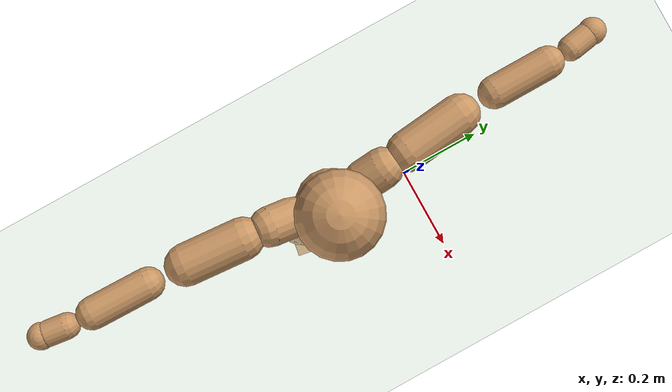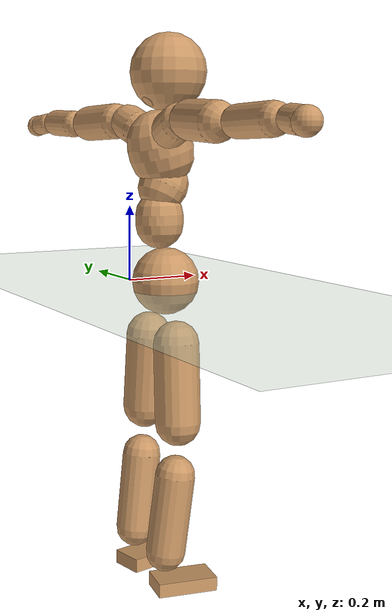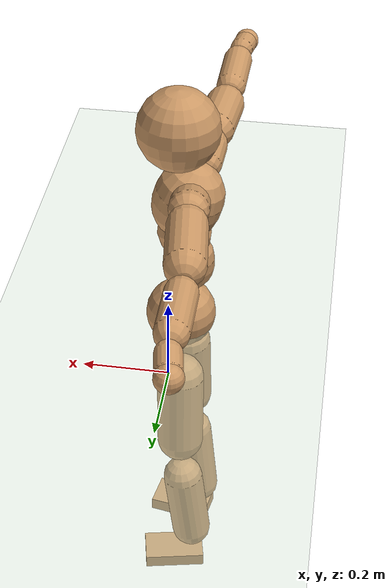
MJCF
<mujoco model="humanoid">
  <compiler coordinate="local"/>
  <default>
    <joint damping="0.0" armature="0.01" stiffness="0.0" limited="true"/>
    <geom conaffinity="1" condim="3" contype="7" margin="0.001" rgba="0.8 0.6 .4 1"/>
  </default>
  <asset>
    <texture type="skybox" builtin="gradient" rgb1=".4 .5 .6" rgb2="0 0 0" width="100" height="100"/>
    <texture builtin="flat" height="1278" mark="cross" markrgb="1 1 1" name="texgeom" random="0.01" rgb1="0.8 0.6 0.4" rgb2="0.8 0.6 0.4" type="cube" width="127"/>
    <texture builtin="checker" height="100" name="texplane" rgb1="0 0 0" rgb2="0.8 0.8 0.8" type="2d" width="100"/>
    <material name="MatPlane" reflectance="0.5" shininess="1" specular="1" texrepeat="60 60" texture="texplane"/>
    <material name="geom" texture="texgeom" texuniform="true"/>
  </asset>
  <worldbody>
    <light cutoff="100" diffuse="1 1 1" dir="-0 0 -1.3" directional="true" exponent="1" pos="0 0 1.3" specular=".1 .1 .1"/>
    <geom conaffinity="1" condim="3" name="floor" pos="0 0 0" rgba="0.8 0.9 0.8 1" size="100 100 .2" type="plane" material="MatPlane"/>
    <body name="Pelvis" pos="-0.0009 -0.2023 0.0234">
      <freejoint name="Pelvis"/>
      <geom type="sphere" contype="1" conaffinity="1" density="500" size="0.0850" pos="0.0000 0.0000 0.0000" name="Pelvis"/>
      <body name="L_Hip" pos="-0.0088 0.0666 -0.0829">
        <joint name="L_Hip_x" type="hinge" pos="0 0 0" axis="1 0 0" stiffness="800" damping="80" armature="0.02" range="-180.0000 180.0000"/>
        <joint name="L_Hip_y" type="hinge" pos="0 0 0" axis="0 1 0" stiffness="800" damping="80" armature="0.02" range="-180.0000 180.0000"/>
        <joint name="L_Hip_z" type="hinge" pos="0 0 0" axis="0 0 1" stiffness="800" damping="80" armature="0.02" range="-180.0000 180.0000"/>
        <geom type="capsule" contype="1" conaffinity="1" density="500" fromto="-0.0008 0.0054 -0.0653 -0.0032 0.0215 -0.2611" size="0.058" name="L_Hip"/>
        <body name="L_Knee" pos="-0.004 0.0269 -0.3263">
          <joint name="L_Knee_x" type="hinge" pos="0 0 0" axis="1 0 0" stiffness="800" damping="80" armature="0.02" range="-180.0000 180.0000"/>
          <joint name="L_Knee_y" type="hinge" pos="0 0 0" axis="0 1 0" stiffness="800" damping="80" armature="0.02" range="-180.0000 180.0000"/>
          <joint name="L_Knee_z" type="hinge" pos="0 0 0" axis="0 0 1" stiffness="800" damping="80" armature="0.02" range="-180.0000 180.0000"/>
          <geom type="capsule" contype="1" conaffinity="1" density="500" fromto="-0.0077 -0.0021 -0.0673 -0.0308 -0.0083 -0.2692" size="0.0501" name="L_Knee"/>
          <body name="L_Ankle" pos="-0.0384 -0.0104 -0.3365">
            <joint name="L_Ankle_x" type="hinge" pos="0 0 0" axis="1 0 0" stiffness="800" damping="80" armature="0.02" range="-180.0000 180.0000"/>
            <joint name="L_Ankle_y" type="hinge" pos="0 0 0" axis="0 1 0" stiffness="800" damping="80" armature="0.02" range="-180.0000 180.0000"/>
            <joint name="L_Ankle_z" type="hinge" pos="0 0 0" axis="0 0 1" stiffness="800" damping="80" armature="0.02" range="-180.0000 180.0000"/>
            <geom type="box" contype="1" conaffinity="1" density="500" pos="0.0533 0.0110 -0.0243" size="0.0774 0.0435 0.0181" quat="0.9949 0.0000 0.0000 0.1013" name="L_Ankle"/>
            <body name="L_Toe" pos="0.1065 0.0219 -0.0486">
              <joint name="L_Toe_x" type="hinge" pos="0 0 0" axis="1 0 0" stiffness="500" damping="50" armature="0.02" range="-180.0000 180.0000"/>
              <joint name="L_Toe_y" type="hinge" pos="0 0 0" axis="0 1 0" stiffness="500" damping="50" armature="0.02" range="-180.0000 180.0000"/>
              <joint name="L_Toe_z" type="hinge" pos="0 0 0" axis="0 0 1" stiffness="500" damping="50" armature="0.02" range="-180.0000 180.0000"/>
              <geom type="box" contype="1" conaffinity="1" density="500" pos="0.0000 0.0000 0.0243" size="0.0009 0.0022 0.0009" quat="0.9941 0.0000 0.0000 0.1082" name="L_Toe"/>
            </body>
          </body>
        </body>
      </body>
      <body name="R_Hip" pos="-0.0064 -0.0648 -0.0818">
        <joint name="R_Hip_x" type="hinge" pos="0 0 0" axis="1 0 0" stiffness="800" damping="80" armature="0.02" range="-180.0000 180.0000"/>
        <joint name="R_Hip_y" type="hinge" pos="0 0 0" axis="0 1 0" stiffness="800" damping="80" armature="0.02" range="-180.0000 180.0000"/>
        <joint name="R_Hip_z" type="hinge" pos="0 0 0" axis="0 0 1" stiffness="800" damping="80" armature="0.02" range="-180.0000 180.0000"/>
        <geom type="capsule" contype="1" conaffinity="1" density="500" fromto="-0.0013 -0.0061 -0.0666 -0.0052 -0.0243 -0.2662" size="0.0575" name="R_Hip"/>
        <body name="R_Knee" pos="-0.0065 -0.0304 -0.3328">
          <joint name="R_Knee_x" type="hinge" pos="0 0 0" axis="1 0 0" stiffness="800" damping="80" armature="0.02" range="-180.0000 180.0000"/>
          <joint name="R_Knee_y" type="hinge" pos="0 0 0" axis="0 1 0" stiffness="800" damping="80" armature="0.02" range="-180.0000 180.0000"/>
          <joint name="R_Knee_z" type="hinge" pos="0 0 0" axis="0 0 1" stiffness="800" damping="80" armature="0.02" range="-180.0000 180.0000"/>
          <geom type="capsule" contype="1" conaffinity="1" density="500" fromto="-0.0075 0.0025 -0.0674 -0.0301 0.0101 -0.2696" size="0.0505" name="R_Knee"/>
          <body name="R_Ankle" pos="-0.0376 0.0126 -0.337">
            <joint name="R_Ankle_x" type="hinge" pos="0 0 0" axis="1 0 0" stiffness="800" damping="80" armature="0.02" range="-180.0000 180.0000"/>
            <joint name="R_Ankle_y" type="hinge" pos="0 0 0" axis="0 1 0" stiffness="800" damping="80" armature="0.02" range="-180.0000 180.0000"/>
            <joint name="R_Ankle_z" type="hinge" pos="0 0 0" axis="0 0 1" stiffness="800" damping="80" armature="0.02" range="-180.0000 180.0000"/>
            <geom type="box" contype="1" conaffinity="1" density="500" pos="0.0548 -0.0095 -0.0203" size="0.0776 0.0437 0.018" quat="0.9963 0.0000 0.0000 -0.0856" name="R_Ankle"/>
            <body name="R_Toe" pos="0.1096 -0.019 -0.0407">
              <joint name="R_Toe_x" type="hinge" pos="0 0 0" axis="1 0 0" stiffness="500" damping="50" armature="0.02" range="-180.0000 180.0000"/>
              <joint name="R_Toe_y" type="hinge" pos="0 0 0" axis="0 1 0" stiffness="500" damping="50" armature="0.02" range="-180.0000 180.0000"/>
              <joint name="R_Toe_z" type="hinge" pos="0 0 0" axis="0 0 1" stiffness="500" damping="50" armature="0.02" range="-180.0000 180.0000"/>
              <geom type="box" contype="1" conaffinity="1" density="500" pos="0.0000 0.0000 0.0220" size="0.0008 0.0022 0.001" quat="0.9972 0.0000 0.0000 -0.0753" name="R_Toe"/>
            </body>
          </body>
        </body>
      </body>
      <body name="Torso" pos="-0.018 -0.0021 0.0948">
        <joint name="Torso_x" type="hinge" pos="0 0 0" axis="1 0 0" stiffness="1000" damping="100" armature="0.02" range="-180.0000 180.0000"/>
        <joint name="Torso_y" type="hinge" pos="0 0 0" axis="0 1 0" stiffness="1000" damping="100" armature="0.02" range="-180.0000 180.0000"/>
        <joint name="Torso_z" type="hinge" pos="0 0 0" axis="0 0 1" stiffness="1000" damping="100" armature="0.02" range="-180.0000 180.0000"/>
        <geom type="capsule" contype="1" conaffinity="1" density="500" fromto="-0.0004 0.0019 0.0726 -0.0003 0.0013 0.0484" size="0.059985" name="Torso"/>
        <body name="Spine" pos="-0.0007 0.0032 0.1209">
          <joint name="Spine_x" type="hinge" pos="0 0 0" axis="1 0 0" stiffness="1000" damping="100" armature="0.02" range="-180.0000 180.0000"/>
          <joint name="Spine_y" type="hinge" pos="0 0 0" axis="0 1 0" stiffness="1000" damping="100" armature="0.02" range="-180.0000 180.0000"/>
          <joint name="Spine_z" type="hinge" pos="0 0 0" axis="0 0 1" stiffness="1000" damping="100" armature="0.02" range="-180.0000 180.0000"/>
          <geom type="capsule" contype="1" conaffinity="1" density="500" fromto="0.0146 0.0013 0.0279 0.0098 0.0008 0.0186" size="0.06138" name="Spine"/>
          <body name="Chest" pos="0.0244 0.0021 0.0465">
            <joint name="Chest_x" type="hinge" pos="0 0 0" axis="1 0 0" stiffness="1000" damping="100" armature="0.02" range="-180.0000 180.0000"/>
            <joint name="Chest_y" type="hinge" pos="0 0 0" axis="0 1 0" stiffness="1000" damping="100" armature="0.02" range="-180.0000 180.0000"/>
            <joint name="Chest_z" type="hinge" pos="0 0 0" axis="0 0 1" stiffness="1000" damping="100" armature="0.02" range="-180.0000 180.0000"/>
            <geom type="capsule" contype="1" conaffinity="1" density="500" fromto="-0.0242 -0.0008 0.0820 -0.0162 -0.0005 0.0547" size="0.081375" name="Chest"/>
            <body name="Neck" pos="-0.0464 -0.0017 0.1928">
              <joint name="Neck_x" type="hinge" pos="0 0 0" axis="1 0 0" stiffness="500" damping="50" armature="0.02" range="-180.0000 180.0000"/>
              <joint name="Neck_y" type="hinge" pos="0 0 0" axis="0 1 0" stiffness="500" damping="50" armature="0.02" range="-180.0000 180.0000"/>
              <joint name="Neck_z" type="hinge" pos="0 0 0" axis="0 0 1" stiffness="500" damping="50" armature="0.02" range="-180.0000 180.0000"/>
              <geom type="capsule" contype="1" conaffinity="1" density="500" fromto="0.0097 0.0008 0.0119 0.0389 0.0033 0.0477" size="0.035991" name="Neck"/>
              <body name="Head" pos="0.0487 0.0041 0.0597">
                <joint name="Head_x" type="hinge" pos="0 0 0" axis="1 0 0" stiffness="500" damping="50" armature="0.02" range="-180.0000 180.0000"/>
                <joint name="Head_y" type="hinge" pos="0 0 0" axis="0 1 0" stiffness="500" damping="50" armature="0.02" range="-180.0000 180.0000"/>
                <joint name="Head_z" type="hinge" pos="0 0 0" axis="0 0 1" stiffness="500" damping="50" armature="0.02" range="-180.0000 180.0000"/>
                <geom type="sphere" contype="1" conaffinity="1" density="500" size="0.0956" pos="0.0000 0.0000 0.0000" name="Head"/>
              </body>
            </body>
            <body name="L_Thorax" pos="-0.0349 0.0691 0.1096">
              <joint name="L_Thorax_x" type="hinge" pos="0 0 0" axis="1 0 0" stiffness="500" damping="50" armature="0.02" range="-180.0000 180.0000"/>
              <joint name="L_Thorax_y" type="hinge" pos="0 0 0" axis="0 1 0" stiffness="500" damping="50" armature="0.02" range="-180.0000 180.0000"/>
              <joint name="L_Thorax_z" type="hinge" pos="0 0 0" axis="0 0 1" stiffness="500" damping="50" armature="0.02" range="-180.0000 180.0000"/>
              <geom type="capsule" contype="1" conaffinity="1" density="500" fromto="-0.0012 0.0162 0.0057 -0.0047 0.0649 0.0227" size="0.0457" name="L_Thorax"/>
              <body name="L_Shoulder" pos="-0.0059 0.0811 0.0283">
                <joint name="L_Shoulder_x" type="hinge" pos="0 0 0" axis="1 0 0" stiffness="500" damping="50" armature="0.02" range="-720.0000 720.0000"/>
                <joint name="L_Shoulder_y" type="hinge" pos="0 0 0" axis="0 1 0" stiffness="500" damping="50" armature="0.02" range="-720.0000 720.0000"/>
                <joint name="L_Shoulder_z" type="hinge" pos="0 0 0" axis="0 0 1" stiffness="500" damping="50" armature="0.02" range="-720.0000 720.0000"/>
                <geom type="capsule" contype="1" conaffinity="1" density="500" fromto="-0.0048 0.0455 -0.0017 -0.0194 0.1820 -0.0067" size="0.046" name="L_Shoulder"/>
                <body name="L_Elbow" pos="-0.0242 0.2275 -0.0084">
                  <joint name="L_Elbow_x" type="hinge" pos="0 0 0" axis="1 0 0" stiffness="500" damping="50" armature="0.02" range="-720.0000 720.0000"/>
                  <joint name="L_Elbow_y" type="hinge" pos="0 0 0" axis="0 1 0" stiffness="500" damping="50" armature="0.02" range="-720.0000 720.0000"/>
                  <joint name="L_Elbow_z" type="hinge" pos="0 0 0" axis="0 0 1" stiffness="500" damping="50" armature="0.02" range="-720.0000 720.0000"/>
                  <geom type="capsule" contype="1" conaffinity="1" density="500" fromto="-0.0001 0.0434 0.0014 -0.0005 0.1736 0.0055" size="0.0365" name="L_Elbow"/>
                  <body name="L_Wrist" pos="-0.0006 0.217 0.0069">
                    <joint name="L_Wrist_x" type="hinge" pos="0 0 0" axis="1 0 0" stiffness="300" damping="30" armature="0.02" range="-180.0000 180.0000"/>
                    <joint name="L_Wrist_y" type="hinge" pos="0 0 0" axis="0 1 0" stiffness="300" damping="30" armature="0.02" range="-180.0000 180.0000"/>
                    <joint name="L_Wrist_z" type="hinge" pos="0 0 0" axis="0 0 1" stiffness="300" damping="30" armature="0.02" range="-180.0000 180.0000"/>
                    <geom type="capsule" contype="1" conaffinity="1" density="500" fromto="-0.0025 0.0150 -0.0018 -0.0099 0.0598 -0.0072" size="0.0284" name="L_Wrist"/>
                    <body name="L_Hand" pos="-0.0124 0.0748 -0.009">
                      <joint name="L_Hand_x" type="hinge" pos="0 0 0" axis="1 0 0" stiffness="300" damping="30" armature="0.02" range="-180.0000 180.0000"/>
                      <joint name="L_Hand_y" type="hinge" pos="0 0 0" axis="0 1 0" stiffness="300" damping="30" armature="0.02" range="-180.0000 180.0000"/>
                      <joint name="L_Hand_z" type="hinge" pos="0 0 0" axis="0 0 1" stiffness="300" damping="30" armature="0.02" range="-180.0000 180.0000"/>
                      <geom type="sphere" contype="1" conaffinity="1" density="500" size="0.0303" pos="0.0000 0.0000 0.0000" name="L_Hand"/>
                    </body>
                  </body>
                </body>
              </body>
            </body>
            <body name="R_Thorax" pos="-0.0399 -0.0713 0.1075">
              <joint name="R_Thorax_x" type="hinge" pos="0 0 0" axis="1 0 0" stiffness="500" damping="50" armature="0.02" range="-180.0000 180.0000"/>
              <joint name="R_Thorax_y" type="hinge" pos="0 0 0" axis="0 1 0" stiffness="500" damping="50" armature="0.02" range="-180.0000 180.0000"/>
              <joint name="R_Thorax_z" type="hinge" pos="0 0 0" axis="0 0 1" stiffness="500" damping="50" armature="0.02" range="-180.0000 180.0000"/>
              <geom type="capsule" contype="1" conaffinity="1" density="500" fromto="-0.0020 -0.0171 0.0059 -0.0078 -0.0683 0.0234" size="0.0449" name="R_Thorax"/>
              <body name="R_Shoulder" pos="-0.0098 -0.0853 0.0293">
                <joint name="R_Shoulder_x" type="hinge" pos="0 0 0" axis="1 0 0" stiffness="500" damping="50" armature="0.02" range="-720.0000 720.0000"/>
                <joint name="R_Shoulder_y" type="hinge" pos="0 0 0" axis="0 1 0" stiffness="500" damping="50" armature="0.02" range="-720.0000 720.0000"/>
                <joint name="R_Shoulder_z" type="hinge" pos="0 0 0" axis="0 0 1" stiffness="500" damping="50" armature="0.02" range="-720.0000 720.0000"/>
                <geom type="capsule" contype="1" conaffinity="1" density="500" fromto="-0.0035 -0.0447 -0.0019 -0.0140 -0.1790 -0.0077" size="0.0472" name="R_Shoulder"/>
                <body name="R_Elbow" pos="-0.0175 -0.2237 -0.0096">
                  <joint name="R_Elbow_x" type="hinge" pos="0 0 0" axis="1 0 0" stiffness="500" damping="50" armature="0.02" range="-720.0000 720.0000"/>
                  <joint name="R_Elbow_y" type="hinge" pos="0 0 0" axis="0 1 0" stiffness="500" damping="50" armature="0.02" range="-720.0000 720.0000"/>
                  <joint name="R_Elbow_z" type="hinge" pos="0 0 0" axis="0 0 1" stiffness="500" damping="50" armature="0.02" range="-720.0000 720.0000"/>
                  <geom type="capsule" contype="1" conaffinity="1" density="500" fromto="-0.0008 -0.0448 0.0012 -0.0032 -0.1791 0.0048" size="0.0365" name="R_Elbow"/>
                  <body name="R_Wrist" pos="-0.004 -0.2239 0.006">
                    <joint name="R_Wrist_x" type="hinge" pos="0 0 0" axis="1 0 0" stiffness="300" damping="30" armature="0.02" range="-180.0000 180.0000"/>
                    <joint name="R_Wrist_y" type="hinge" pos="0 0 0" axis="0 1 0" stiffness="300" damping="30" armature="0.02" range="-180.0000 180.0000"/>
                    <joint name="R_Wrist_z" type="hinge" pos="0 0 0" axis="0 0 1" stiffness="300" damping="30" armature="0.02" range="-180.0000 180.0000"/>
                    <geom type="capsule" contype="1" conaffinity="1" density="500" fromto="-0.0020 -0.0151 -0.0014 -0.0078 -0.0606 -0.0055" size="0.0293" name="R_Wrist"/>
                    <body name="R_Hand" pos="-0.0098 -0.0757 -0.0069">
                      <joint name="R_Hand_x" type="hinge" pos="0 0 0" axis="1 0 0" stiffness="300" damping="30" armature="0.02" range="-180.0000 180.0000"/>
                      <joint name="R_Hand_y" type="hinge" pos="0 0 0" axis="0 1 0" stiffness="300" damping="30" armature="0.02" range="-180.0000 180.0000"/>
                      <joint name="R_Hand_z" type="hinge" pos="0 0 0" axis="0 0 1" stiffness="300" damping="30" armature="0.02" range="-180.0000 180.0000"/>
                      <geom type="sphere" contype="1" conaffinity="1" density="500" size="0.0306" pos="0.0000 0.0000 0.0000" name="R_Hand"/>
                    </body>
                  </body>
                </body>
              </body>
            </body>
          </body>
        </body>
      </body>
    </body>
  </worldbody>
  <actuator>
    <motor name="L_Hip_x" joint="L_Hip_x" gear="500"/>
    <motor name="L_Hip_y" joint="L_Hip_y" gear="500"/>
    <motor name="L_Hip_z" joint="L_Hip_z" gear="500"/>
    <motor name="L_Knee_x" joint="L_Knee_x" gear="500"/>
    <motor name="L_Knee_y" joint="L_Knee_y" gear="500"/>
    <motor name="L_Knee_z" joint="L_Knee_z" gear="500"/>
    <motor name="L_Ankle_x" joint="L_Ankle_x" gear="500"/>
    <motor name="L_Ankle_y" joint="L_Ankle_y" gear="500"/>
    <motor name="L_Ankle_z" joint="L_Ankle_z" gear="500"/>
    <motor name="L_Toe_x" joint="L_Toe_x" gear="500"/>
    <motor name="L_Toe_y" joint="L_Toe_y" gear="500"/>
    <motor name="L_Toe_z" joint="L_Toe_z" gear="500"/>
    <motor name="R_Hip_x" joint="R_Hip_x" gear="500"/>
    <motor name="R_Hip_y" joint="R_Hip_y" gear="500"/>
    <motor name="R_Hip_z" joint="R_Hip_z" gear="500"/>
    <motor name="R_Knee_x" joint="R_Knee_x" gear="500"/>
    <motor name="R_Knee_y" joint="R_Knee_y" gear="500"/>
    <motor name="R_Knee_z" joint="R_Knee_z" gear="500"/>
    <motor name="R_Ankle_x" joint="R_Ankle_x" gear="500"/>
    <motor name="R_Ankle_y" joint="R_Ankle_y" gear="500"/>
    <motor name="R_Ankle_z" joint="R_Ankle_z" gear="500"/>
    <motor name="R_Toe_x" joint="R_Toe_x" gear="500"/>
    <motor name="R_Toe_y" joint="R_Toe_y" gear="500"/>
    <motor name="R_Toe_z" joint="R_Toe_z" gear="500"/>
    <motor name="Torso_x" joint="Torso_x" gear="500"/>
    <motor name="Torso_y" joint="Torso_y" gear="500"/>
    <motor name="Torso_z" joint="Torso_z" gear="500"/>
    <motor name="Spine_x" joint="Spine_x" gear="500"/>
    <motor name="Spine_y" joint="Spine_y" gear="500"/>
    <motor name="Spine_z" joint="Spine_z" gear="500"/>
    <motor name="Chest_x" joint="Chest_x" gear="500"/>
    <motor name="Chest_y" joint="Chest_y" gear="500"/>
    <motor name="Chest_z" joint="Chest_z" gear="500"/>
    <motor name="Neck_x" joint="Neck_x" gear="500"/>
    <motor name="Neck_y" joint="Neck_y" gear="500"/>
    <motor name="Neck_z" joint="Neck_z" gear="500"/>
    <motor name="Head_x" joint="Head_x" gear="500"/>
    <motor name="Head_y" joint="Head_y" gear="500"/>
    <motor name="Head_z" joint="Head_z" gear="500"/>
    <motor name="L_Thorax_x" joint="L_Thorax_x" gear="500"/>
    <motor name="L_Thorax_y" joint="L_Thorax_y" gear="500"/>
    <motor name="L_Thorax_z" joint="L_Thorax_z" gear="500"/>
    <motor name="L_Shoulder_x" joint="L_Shoulder_x" gear="500"/>
    <motor name="L_Shoulder_y" joint="L_Shoulder_y" gear="500"/>
    <motor name="L_Shoulder_z" joint="L_Shoulder_z" gear="500"/>
    <motor name="L_Elbow_x" joint="L_Elbow_x" gear="500"/>
    <motor name="L_Elbow_y" joint="L_Elbow_y" gear="500"/>
    <motor name="L_Elbow_z" joint="L_Elbow_z" gear="500"/>
    <motor name="L_Wrist_x" joint="L_Wrist_x" gear="500"/>
    <motor name="L_Wrist_y" joint="L_Wrist_y" gear="500"/>
    <motor name="L_Wrist_z" joint="L_Wrist_z" gear="500"/>
    <motor name="L_Hand_x" joint="L_Hand_x" gear="500"/>
    <motor name="L_Hand_y" joint="L_Hand_y" gear="500"/>
    <motor name="L_Hand_z" joint="L_Hand_z" gear="500"/>
    <motor name="R_Thorax_x" joint="R_Thorax_x" gear="500"/>
    <motor name="R_Thorax_y" joint="R_Thorax_y" gear="500"/>
    <motor name="R_Thorax_z" joint="R_Thorax_z" gear="500"/>
    <motor name="R_Shoulder_x" joint="R_Shoulder_x" gear="500"/>
    <motor name="R_Shoulder_y" joint="R_Shoulder_y" gear="500"/>
    <motor name="R_Shoulder_z" joint="R_Shoulder_z" gear="500"/>
    <motor name="R_Elbow_x" joint="R_Elbow_x" gear="500"/>
    <motor name="R_Elbow_y" joint="R_Elbow_y" gear="500"/>
    <motor name="R_Elbow_z" joint="R_Elbow_z" gear="500"/>
    <motor name="R_Wrist_x" joint="R_Wrist_x" gear="500"/>
    <motor name="R_Wrist_y" joint="R_Wrist_y" gear="500"/>
    <motor name="R_Wrist_z" joint="R_Wrist_z" gear="500"/>
    <motor name="R_Hand_x" joint="R_Hand_x" gear="500"/>
    <motor name="R_Hand_y" joint="R_Hand_y" gear="500"/>
    <motor name="R_Hand_z" joint="R_Hand_z" gear="500"/>
  </actuator>
  <contact>
    <exclude body1="Torso" body2="Chest"/>
    <exclude body1="Head" body2="Chest"/>
    <exclude body1="R_Knee" body2="R_Toe"/>
    <exclude body1="R_Knee" body2="L_Ankle"/>
    <exclude body1="R_Knee" body2="L_Toe"/>
    <exclude body1="L_Knee" body2="L_Toe"/>
    <exclude body1="L_Knee" body2="R_Ankle"/>
    <exclude body1="L_Knee" body2="R_Toe"/>
    <exclude body1="L_Shoulder" body2="Chest"/>
    <exclude body1="R_Shoulder" body2="Chest"/>
  </contact>
  <sensor/>
  <size njmax="700" nconmax="700"/>
</mujoco>
